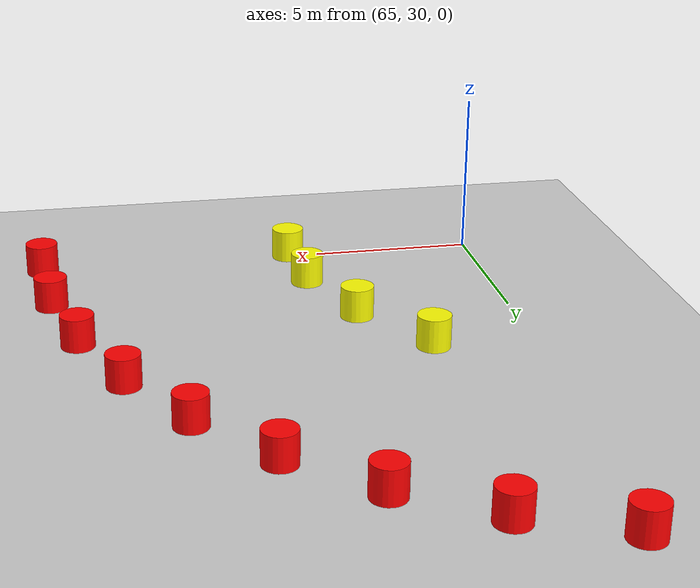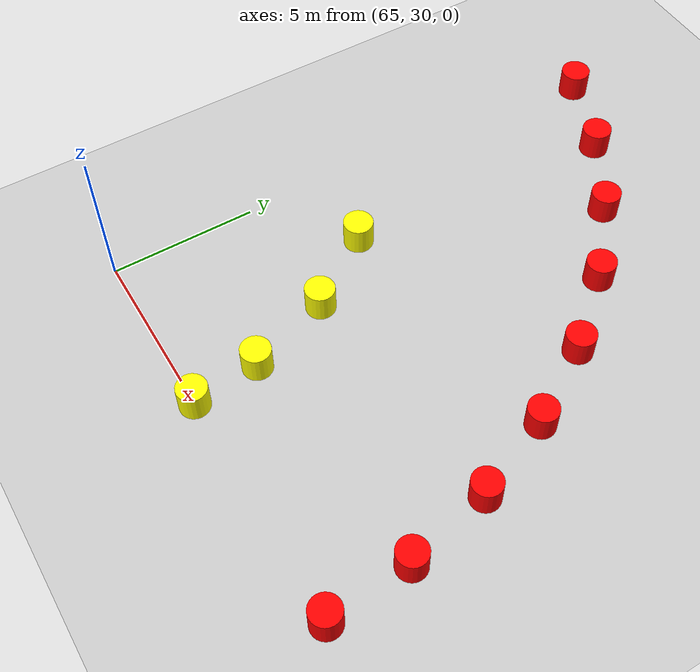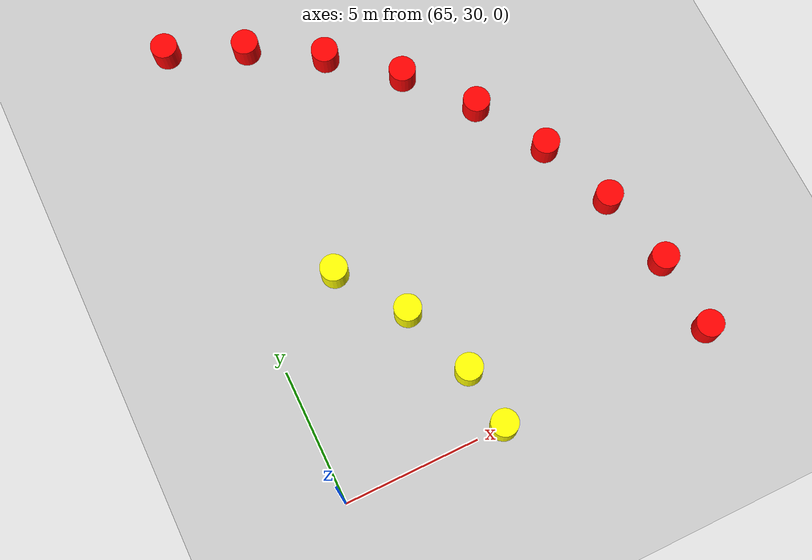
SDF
<sdf version="1.9">
 <world name="empty">
  <model name="ground_plane">
   <static>true</static>
   <link name="link">
    <collision name="collision">
     <geometry><plane><normal>0 0 1</normal><size>1000 1000</size></plane></geometry>
    </collision>
    <visual name="visual">
     <geometry><plane><normal>0 0 1</normal><size>1000 1000</size></plane></geometry>
     <material>
      <ambient>0.8 0.8 0.8 1</ambient>
      <diffuse>0.8 0.8 0.8 1</diffuse>
      <specular>0.8 0.8 0.8 1</specular>
     </material>
    </visual>
    <inertial>
     <mass>1</mass>
     <inertia><ixx>1</ixx><ixy>0</ixy><ixz>0</ixz><iyy>1</iyy><iyz>0</iyz><izz>1</izz></inertia>
    </inertial>
   </link>
  </model>
  <model name="red_cone_36">
   <pose>65.90077306308712 48.060478323066235 0.5 0 -0 0</pose>
   <link name="cylinder_link">
    <inertial>
     <inertia>
      <ixx>0.14580000000000001</ixx>
      <ixy>0</ixy>
      <ixz>0</ixz>
      <iyy>0.14580000000000001</iyy>
      <iyz>0</iyz>
      <izz>0.125</izz>
     </inertia>
     <mass>1</mass>
    </inertial>
    <collision name="cylinder_collision">
     <geometry><cylinder><radius>0.5</radius><length>1</length></cylinder></geometry>
    </collision>
    <visual name="cylinder_visual">
     <geometry><cylinder><radius>0.5</radius><length>1</length></cylinder></geometry>
     <material><ambient>1 0 0 1</ambient><diffuse>1 0 0 1</diffuse><specular>1 1 1 1</specular></material>
    </visual>
   </link>
   <static>false</static>
  </model>
  <model name="red_cone_37">
   <pose>68.66719066276187 46.90798054219762 0.5 0 -0 0</pose>
   <link name="cylinder_link">
    <inertial>
     <inertia>
      <ixx>0.14580000000000001</ixx>
      <ixy>0</ixy>
      <ixz>0</ixz>
      <iyy>0.14580000000000001</iyy>
      <iyz>0</iyz>
      <izz>0.125</izz>
     </inertia>
     <mass>1</mass>
    </inertial>
    <collision name="cylinder_collision">
     <geometry><cylinder><radius>0.5</radius><length>1</length></cylinder></geometry>
    </collision>
    <visual name="cylinder_visual">
     <geometry><cylinder><radius>0.5</radius><length>1</length></cylinder></geometry>
     <material><ambient>1 0 0 1</ambient><diffuse>1 0 0 1</diffuse><specular>1 1 1 1</specular></material>
    </visual>
   </link>
   <static>false</static>
  </model>
  <model name="red_cone_38">
   <pose>71.21797726265454 45.334829185046885 0.5 0 -0 0</pose>
   <link name="cylinder_link">
    <inertial>
     <inertia>
      <ixx>0.14580000000000001</ixx>
      <ixy>0</ixy>
      <ixz>0</ixz>
      <iyy>0.14580000000000001</iyy>
      <iyz>0</iyz>
      <izz>0.125</izz>
     </inertia>
     <mass>1</mass>
    </inertial>
    <collision name="cylinder_collision">
     <geometry><cylinder><radius>0.5</radius><length>1</length></cylinder></geometry>
    </collision>
    <visual name="cylinder_visual">
     <geometry><cylinder><radius>0.5</radius><length>1</length></cylinder></geometry>
     <material><ambient>1 0 0 1</ambient><diffuse>1 0 0 1</diffuse><specular>1 1 1 1</specular></material>
    </visual>
   </link>
   <static>false</static>
  </model>
  <model name="red_cone_39">
   <pose>73.4896718537523 43.380162677564236 0.5 0 -0 0</pose>
   <link name="cylinder_link">
    <inertial>
     <inertia>
      <ixx>0.14580000000000001</ixx>
      <ixy>0</ixy>
      <ixz>0</ixz>
      <iyy>0.14580000000000001</iyy>
      <iyz>0</iyz>
      <izz>0.125</izz>
     </inertia>
     <mass>1</mass>
    </inertial>
    <collision name="cylinder_collision">
     <geometry><cylinder><radius>0.5</radius><length>1</length></cylinder></geometry>
    </collision>
    <visual name="cylinder_visual">
     <geometry><cylinder><radius>0.5</radius><length>1</length></cylinder></geometry>
     <material><ambient>1 0 0 1</ambient><diffuse>1 0 0 1</diffuse><specular>1 1 1 1</specular></material>
    </visual>
   </link>
   <static>false</static>
  </model>
  <model name="red_cone_40">
   <pose>75.42575695594681 41.09261115950879 0.5 0 -0 0</pose>
   <link name="cylinder_link">
    <inertial>
     <inertia>
      <ixx>0.14580000000000001</ixx>
      <ixy>0</ixy>
      <ixz>0</ixz>
      <iyy>0.14580000000000001</iyy>
      <iyz>0</iyz>
      <izz>0.125</izz>
     </inertia>
     <mass>1</mass>
    </inertial>
    <collision name="cylinder_collision">
     <geometry><cylinder><radius>0.5</radius><length>1</length></cylinder></geometry>
    </collision>
    <visual name="cylinder_visual">
     <geometry><cylinder><radius>0.5</radius><length>1</length></cylinder></geometry>
     <material><ambient>1 0 0 1</ambient><diffuse>1 0 0 1</diffuse><specular>1 1 1 1</specular></material>
    </visual>
   </link>
   <static>false</static>
  </model>
  <model name="red_cone_41">
   <pose>76.97806471618236 38.5290866154075 0.5 0 -0 0</pose>
   <link name="cylinder_link">
    <inertial>
     <inertia>
      <ixx>0.14580000000000001</ixx>
      <ixy>0</ixy>
      <ixz>0</ixz>
      <iyy>0.14580000000000001</iyy>
      <iyz>0</iyz>
      <izz>0.125</izz>
     </inertia>
     <mass>1</mass>
    </inertial>
    <collision name="cylinder_collision">
     <geometry><cylinder><radius>0.5</radius><length>1</length></cylinder></geometry>
    </collision>
    <visual name="cylinder_visual">
     <geometry><cylinder><radius>0.5</radius><length>1</length></cylinder></geometry>
     <material><ambient>1 0 0 1</ambient><diffuse>1 0 0 1</diffuse><specular>1 1 1 1</specular></material>
    </visual>
   </link>
   <static>false</static>
  </model>
  <model name="red_cone_42">
   <pose>78.10797527626814 35.753366961533224 0.5 0 -0 0</pose>
   <link name="cylinder_link">
    <inertial>
     <inertia>
      <ixx>0.14580000000000001</ixx>
      <ixy>0</ixy>
      <ixz>0</ixz>
      <iyy>0.14580000000000001</iyy>
      <iyz>0</iyz>
      <izz>0.125</izz>
     </inertia>
     <mass>1</mass>
    </inertial>
    <collision name="cylinder_collision">
     <geometry><cylinder><radius>0.5</radius><length>1</length></cylinder></geometry>
    </collision>
    <visual name="cylinder_visual">
     <geometry><cylinder><radius>0.5</radius><length>1</length></cylinder></geometry>
     <material><ambient>1 0 0 1</ambient><diffuse>1 0 0 1</diffuse><specular>1 1 1 1</specular></material>
    </visual>
   </link>
   <static>false</static>
  </model>
  <model name="red_cone_43">
   <pose>78.78737759616635 32.83450931539595 0.5 0 -0 0</pose>
   <link name="cylinder_link">
    <inertial>
     <inertia>
      <ixx>0.14580000000000001</ixx>
      <ixy>0</ixy>
      <ixz>0</ixz>
      <iyy>0.14580000000000001</iyy>
      <iyz>0</iyz>
      <izz>0.125</izz>
     </inertia>
     <mass>1</mass>
    </inertial>
    <collision name="cylinder_collision">
     <geometry><cylinder><radius>0.5</radius><length>1</length></cylinder></geometry>
    </collision>
    <visual name="cylinder_visual">
     <geometry><cylinder><radius>0.5</radius><length>1</length></cylinder></geometry>
     <material><ambient>1 0 0 1</ambient><diffuse>1 0 0 1</diffuse><specular>1 1 1 1</specular></material>
    </visual>
   </link>
   <static>false</static>
  </model>
  <model name="red_cone_44">
   <pose>79.0 30.000000000000004 0.5 0 -0 0</pose>
   <link name="cylinder_link">
    <inertial>
     <inertia>
      <ixx>0.14580000000000001</ixx>
      <ixy>0</ixy>
      <ixz>0</ixz>
      <iyy>0.14580000000000001</iyy>
      <iyz>0</iyz>
      <izz>0.125</izz>
     </inertia>
     <mass>1</mass>
    </inertial>
    <collision name="cylinder_collision">
     <geometry><cylinder><radius>0.5</radius><length>1</length></cylinder></geometry>
    </collision>
    <visual name="cylinder_visual">
     <geometry><cylinder><radius>0.5</radius><length>1</length></cylinder></geometry>
     <material><ambient>1 0 0 1</ambient><diffuse>1 0 0 1</diffuse><specular>1 1 1 1</specular></material>
    </visual>
   </link>
   <static>false</static>
  </model>
  <model name="yellow_cone_37">
   <pose>68.02894641681081 37.51904378468305 0.5 0 -0 0</pose>
   <link name="cylinder_link">
    <inertial>
     <inertia>
      <ixx>0.14580000000000001</ixx>
      <ixy>0</ixy>
      <ixz>0</ixz>
      <iyy>0.14580000000000001</iyy>
      <iyz>0</iyz>
      <izz>0.125</izz>
     </inertia>
     <mass>1</mass>
    </inertial>
    <collision name="cylinder_collision">
     <geometry><cylinder><radius>0.5</radius><length>1</length></cylinder></geometry>
    </collision>
    <visual name="cylinder_visual">
     <geometry><cylinder><radius>0.5</radius><length>1</length></cylinder></geometry>
     <material><ambient>1 1 0 1</ambient><diffuse>1 1 0 1</diffuse><specular>1 1 1 1</specular></material>
    </visual>
   </link>
   <static>false</static>
  </model>
  <model name="yellow_cone_38">
   <pose>69.75751688185402 35.078470665499 0.5 0 -0 0</pose>
   <link name="cylinder_link">
    <inertial>
     <inertia>
      <ixx>0.14580000000000001</ixx>
      <ixy>0</ixy>
      <ixz>0</ixz>
      <iyy>0.14580000000000001</iyy>
      <iyz>0</iyz>
      <izz>0.125</izz>
     </inertia>
     <mass>1</mass>
    </inertial>
    <collision name="cylinder_collision">
     <geometry><cylinder><radius>0.5</radius><length>1</length></cylinder></geometry>
    </collision>
    <visual name="cylinder_visual">
     <geometry><cylinder><radius>0.5</radius><length>1</length></cylinder></geometry>
     <material><ambient>1 1 0 1</ambient><diffuse>1 1 0 1</diffuse><specular>1 1 1 1</specular></material>
    </visual>
   </link>
   <static>false</static>
  </model>
  <model name="yellow_cone_39">
   <pose>70.7648090376316 32.26249560957034 0.5 0 -0 0</pose>
   <link name="cylinder_link">
    <inertial>
     <inertia>
      <ixx>0.14580000000000001</ixx>
      <ixy>0</ixy>
      <ixz>0</ixz>
      <iyy>0.14580000000000001</iyy>
      <iyz>0</iyz>
      <izz>0.125</izz>
     </inertia>
     <mass>1</mass>
    </inertial>
    <collision name="cylinder_collision">
     <geometry><cylinder><radius>0.5</radius><length>1</length></cylinder></geometry>
    </collision>
    <visual name="cylinder_visual">
     <geometry><cylinder><radius>0.5</radius><length>1</length></cylinder></geometry>
     <material><ambient>1 1 0 1</ambient><diffuse>1 1 0 1</diffuse><specular>1 1 1 1</specular></material>
    </visual>
   </link>
   <static>false</static>
  </model>
  <model name="yellow_cone_40">
   <pose>71.0 30.000000000000004 0.5 0 -0 0</pose>
   <link name="cylinder_link">
    <inertial>
     <inertia>
      <ixx>0.14580000000000001</ixx>
      <ixy>0</ixy>
      <ixz>0</ixz>
      <iyy>0.14580000000000001</iyy>
      <iyz>0</iyz>
      <izz>0.125</izz>
     </inertia>
     <mass>1</mass>
    </inertial>
    <collision name="cylinder_collision">
     <geometry><cylinder><radius>0.5</radius><length>1</length></cylinder></geometry>
    </collision>
    <visual name="cylinder_visual">
     <geometry><cylinder><radius>0.5</radius><length>1</length></cylinder></geometry>
     <material><ambient>1 1 0 1</ambient><diffuse>1 1 0 1</diffuse><specular>1 1 1 1</specular></material>
    </visual>
   </link>
   <static>false</static>
  </model>
 </world>
</sdf>
